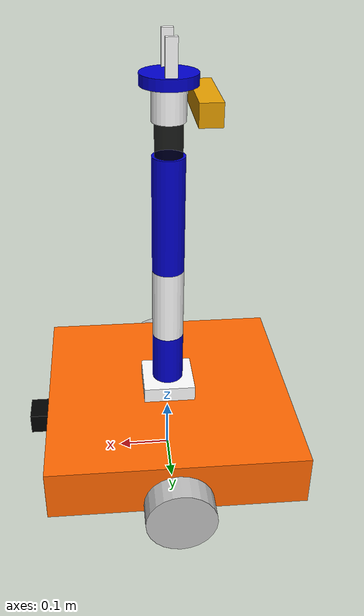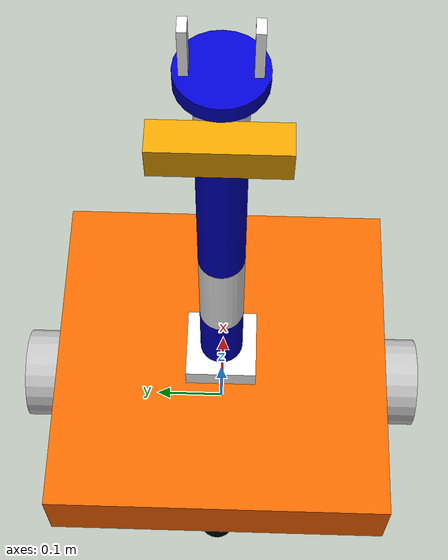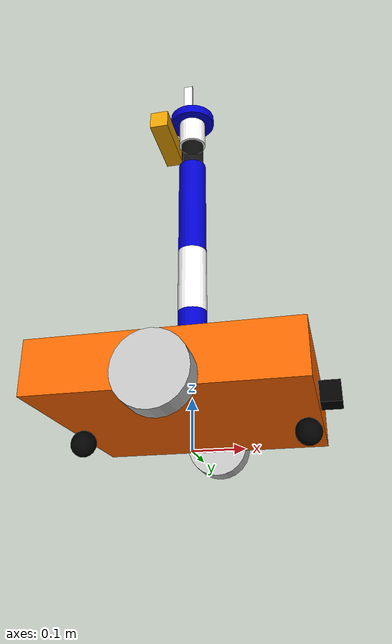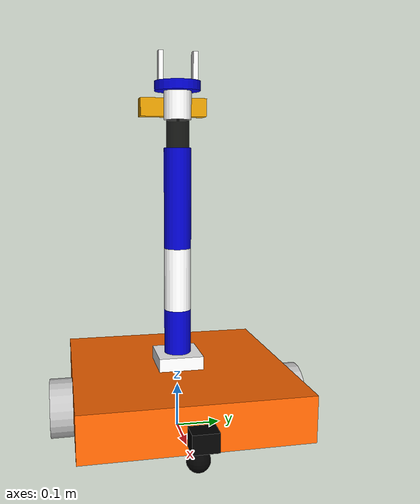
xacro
<?xml version="1.0"?>
<robot name="six_arm"
    xmlns:xacro="http://www.ros.org/wiki/xacro">

    <xacro:include filename="$(find mybot_description)/urdf/originbot_with_arm_gazebo.xacro" />
    <xacro:include filename="$(find mybot_description)/urdf/rgbd_gazebo.xacro" />
    <xacro:include filename="$(find mybot_description)/urdf/camera_gazebo.xacro" />
    <xacro:include filename="$(find mybot_description)/urdf/lidar_gazebo.xacro" />
    <xacro:include filename="$(find mybot_description)/urdf/imu_gazebo.xacro" />

    <!-- rgbd -->
    <xacro:property name="rgbd_offset_x" value="0.06" />
    <xacro:property name="rgbd_offset_y" value="0" />
    <xacro:property name="rgbd_offset_z" value="-0.03" />

    <joint name="rgbd_joint" type="fixed">
        <origin xyz="${-rgbd_offset_x} ${rgbd_offset_y} ${rgbd_offset_z}" rpy="0 ${-M_PI/2} 0" />
        <parent link="grasping_frame" />
        <child link="camera_rgbd_link" />
    </joint>

    <xacro:rgbd_camera prefix="camera_rgbd" />

    <!-- Camera -->
    <xacro:property name="camera_offset_x" value="${base_length/2+0.02}" />
    <xacro:property name="camera_offset_y" value="0" />
    <xacro:property name="camera_offset_z" value="-0.01" />

    <joint name="camera_joint" type="fixed">
        <origin xyz="${camera_offset_x} ${camera_offset_y} ${camera_offset_z}" rpy="0 0 0" />
        <parent link="base_link" />
        <child link="camera_link" />
    </joint>

    <xacro:mipi_camera prefix="camera" />

    <!-- Lidar -->
    <xacro:property name="lidar_offset_x" value="0" />
    <xacro:property name="lidar_offset_y" value="0" />
    <xacro:property name="lidar_offset_z" value="${base_height/2+0.01}" />
    <xacro:property name="robot_radius" value="${(base_length**2 + base_width**2)**0.5 / 2}" />
    <xacro:property name="safety_margin" value="0.05" />

    <joint name="lidar_joint" type="fixed">
        <origin xyz="${lidar_offset_x} ${lidar_offset_y} ${lidar_offset_z}" rpy="0 0 0" />
        <parent link="base_link" />
        <child link="laser_link" />
    </joint>

    <!-- Keep near obstacles visible before they reach the base footprint. -->
    <xacro:lidar prefix="laser" gz_visualize="false" range_min="0.30" update_rate="20" />

    <!-- IMU -->
    <xacro:imu_sensor parent_link="base_link" />

</robot>

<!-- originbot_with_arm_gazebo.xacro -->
<robot name="six_arm"
    xmlns:xacro="http://www.ros.org/wiki/xacro">

    <xacro:include filename="$(find mybot_description)/urdf/large_base.xacro" />
    <xacro:include filename="$(find mybot_description)/urdf/arm.xacro" />

    <!-- arm -->
    <xacro:property name="arm_offset_x" value="0.0" />
    <xacro:property name="arm_offset_y" value="0" />
    <xacro:property name="arm_offset_z" value="${base_height/2+0.01}" />

    <joint name="connect_joint" type="fixed">
        <origin xyz="${arm_offset_x} ${arm_offset_y} ${arm_offset_z}" rpy=" 0 0 0" />
        <parent link="base_link" />
        <child link="arm_base_link" />
    </joint>

    <!-- /////////////////////////////////   Gazebo   ////////////////////////////////////// -->
    <!-- /////////////////////////////////   机械臂   ////////////////////////////////////// -->
    <gazebo reference="arm_base_link">
        <material>Gazebo/White</material>
    </gazebo>
    <gazebo reference="link1">
        <material>Gazebo/Blue</material>
    </gazebo>
    <gazebo reference="link2">
        <material>Gazebo/White</material>
    </gazebo>
    <gazebo reference="link3">
        <material>Gazebo/Blue</material>
    </gazebo>
    <gazebo reference="link4">
        <material>Gazebo/Black</material>
    </gazebo>
    <gazebo reference="link5">
        <material>Gazebo/White</material>
    </gazebo>
    <gazebo reference="link6">
        <material>Gazebo/Blue</material>
    </gazebo>
    <gazebo reference="gripper_finger_link1">
        <material>Gazebo/White</material>
    </gazebo>
    <gazebo reference="gripper_finger_link2">
        <material>Gazebo/White</material>
    </gazebo>

    <xacro:macro name="ros2_control_joint" params="joint_name">
        <joint name="${joint_name}">
            <command_interface name="position">
                <param name="min">-1</param>
                <param name="max">1</param>
            </command_interface>
            <state_interface name="position">
                <param name="initial_value">0.0</param>
            </state_interface>
            <state_interface name="velocity" />
        </joint>
    </xacro:macro>

    <ros2_control name="GazeboSystem" type="system">
        <hardware>
            <plugin>gazebo_ros2_control/GazeboSystem</plugin>
        </hardware>
        <xacro:ros2_control_joint joint_name="joint1" />
        <xacro:ros2_control_joint joint_name="joint2" />
        <xacro:ros2_control_joint joint_name="joint3" />
        <xacro:ros2_control_joint joint_name="joint4" />
        <xacro:ros2_control_joint joint_name="joint5" />
        <xacro:ros2_control_joint joint_name="joint6" />
        <xacro:ros2_control_joint joint_name="finger_joint1" />
    </ros2_control>

    <gazebo>
        <plugin name="gazebo_ros2_control" filename="libgazebo_ros2_control.so">
            <parameters>$(find mybot)/config/ros2_controllers.yaml</parameters>
            <robot_param_node>robot_state_publisher</robot_param_node>
        </plugin>
    </gazebo>

    <!-- /////////////////////////////////   底盘   ////////////////////////////////////// -->
    <gazebo reference="base_footprint">
        <turnGravityOff>false</turnGravityOff>
    </gazebo>
    <gazebo reference="base_link">
        <material>Gazebo/Blue</material>
        <kp>1000000.0</kp>  <!-- 接触刚度（防止穿透） -->
        <kd>100.0</kd>    <!-- 接触阻尼（抑制弹飞） -->
        <minDepth>0.001</minDepth> <!-- 最小穿透深度 -->
    </gazebo>

    <gazebo reference="backl_caster_link">
        <material>Gazebo/Black</material>
        <mu1>0.01</mu1>  <!-- 静摩擦系数 -->
        <mu2>0.01</mu2>  <!-- 动摩擦系数 -->
        <kp>1000000.0</kp>  <!-- 接触刚度（防止穿透） -->
        <kd>100.0</kd>    <!-- 接触阻尼（抑制弹飞） -->
        <minDepth>0.001</minDepth> <!-- 最小穿透深度 -->
    </gazebo>

    <gazebo reference="backr_caster_link">
        <material>Gazebo/Black</material>
        <mu1>0.01</mu1>  <!-- 静摩擦系数 -->
        <mu2>0.01</mu2>  <!-- 动摩擦系数 -->
        <kp>1000000.0</kp>  <!-- 接触刚度（防止穿透） -->
        <kd>100.0</kd>    <!-- 接触阻尼（抑制弹飞） -->
        <minDepth>0.001</minDepth> <!-- 最小穿透深度 -->
    </gazebo>

    <xacro:macro name="wheel_transmission" params="prefix">
        <transmission name="${prefix}_wheel_joint_trans">
            <type>transmission_interface/SimpleTransmission</type>
            <joint name="${prefix}_wheel_joint">
                <hardwareInterface>hardware_interface/VelocityJointInterface</hardwareInterface>
            </joint>
            <actuator name="${prefix}_wheel_joint_motor">
                <hardwareInterface>hardware_interface/VelocityJointInterface</hardwareInterface>
                <mechanicalReduction>1</mechanicalReduction>
            </actuator>
        </transmission>

        <gazebo reference="${prefix}_wheel_link">
            <material>Gazebo/Gray</material>
            <mu1>1.0</mu1>  <!-- 驱动轮第一方向摩擦系数 -->
            <mu2>1.0</mu2>  <!-- 驱动轮第二方向摩擦系数 -->
            <kp>1000000.0</kp>  <!-- 接触刚度（防止穿透） -->
            <kd>100.0</kd>    <!-- 接触阻尼（抑制弹飞） -->
            <minDepth>0.001</minDepth> <!-- 最小穿透深度 -->
        </gazebo>
    </xacro:macro>

    <xacro:wheel_transmission prefix="left" />
    <xacro:wheel_transmission prefix="right" />

    <!-- Select one actuator only; default on the research branch is body force. -->
    <xacro:property name="drive_model" value="$(optenv AIC_DRIVE_MODEL body_force)" />
    <xacro:if value="${dict(wheel=True, body_force=False)[drive_model]}">
    <gazebo>
        <plugin name="differential_drive_controller" filename="libgazebo_ros_diff_drive.so">
            <update_rate>30</update_rate>
            <!-- wheels -->
            <left_joint>left_wheel_joint</left_joint>
            <right_joint>right_wheel_joint</right_joint>

            <!-- kinematics -->
            <wheel_separation>${wheel_joint_y*2}</wheel_separation>
            <wheel_diameter>${2*wheel_radius}</wheel_diameter>

            <!-- limits -->
            <max_wheel_torque>1000</max_wheel_torque>
            <!-- Nav2 velocity_smoother handles commanded acceleration and braking. -->
            <max_wheel_acceleration>0.0</max_wheel_acceleration>

            <!-- output -->
            <command_topic>cmd_vel</command_topic>
            <publish_odom>true</publish_odom>
            <publish_odom_tf>true</publish_odom_tf>
            <publish_wheel_tf>true</publish_wheel_tf>

            <odometry_topic>odom</odometry_topic>
            <odometry_frame>odom</odometry_frame>
            <robot_base_frame>base_footprint</robot_base_frame>
        </plugin>
    </gazebo>
    </xacro:if>
    <xacro:if value="${dict(wheel=False, body_force=True)[drive_model]}">
      <gazebo>
        <plugin name="body_force_controller" filename="libaic_body_drive.so">
          <body_link>base_footprint</body_link>
          <publish_rate>30</publish_rate>
          <command_timeout>0.5</command_timeout>
          <max_linear_speed>$(optenv AIC_BODY_MAX_LINEAR_SPEED 6.0)</max_linear_speed>
          <max_angular_speed>$(optenv AIC_BODY_MAX_ANGULAR_SPEED 4.0)</max_angular_speed>
          <max_lateral_acceleration>3.0</max_lateral_acceleration>
          <tilt_stop_radians>0.08726646259971647</tilt_stop_radians>
          <forward_kp>300</forward_kp><forward_ki>150</forward_ki><forward_limit>1000</forward_limit>
          <lateral_kp>1000</lateral_kp><lateral_ki>300</lateral_ki><lateral_limit>1000</lateral_limit>
          <yaw_kp>200</yaw_kp><yaw_ki>100</yaw_ki><yaw_limit>1000</yaw_limit>
          <odometry_frame>odom</odometry_frame>
          <robot_base_frame>base_footprint</robot_base_frame>
        </plugin>
      </gazebo>
    </xacro:if>
</robot>

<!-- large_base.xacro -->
<robot name="originbot"
    xmlns:xacro="http://www.ros.org/wiki/xacro">
    <!-- 大号机器人模型 -->
    <!-- PROPERTY LIST -->
    <xacro:property name="M_PI" value="3.1415926" />
    <xacro:property name="base_mass" value="10" />

    <xacro:property name="base_width" value="0.480" />
    <xacro:property name="base_length" value="0.480" />
    <xacro:property name="base_height" value="0.1" />

    <!-- 轮子 -->
    <xacro:property name="wheel_mass" value="1" />
    <xacro:property name="wheel_radius" value="0.065" />
    <xacro:property name="wheel_length" value="0.050" />

    <!-- base_length/2 = 0.16; x偏移-0.02-->
    <xacro:property name="wheel_joint_x" value="${0}" />
    <!-- (base_width+wheel_length)/2 轮距 -->
    <xacro:property name="wheel_joint_y" value="${(base_width+wheel_length)/2}" />
    <!-- base_height/2 = 0.05;向上偏移一点（-0.015） -->
    <xacro:property name="wheel_joint_z" value="${base_height/2 - 0.015}" />

    <!-- 支撑轮 -->
    <xacro:property name="caster_mass" value="0.4" />
    <!-- 计算中心到地面高度，再减去底盘得到底盘到地面高度:
    wheel_joint_z + wheel_radius  - base_height/2; -->
    <xacro:property name="caster_radius" value="${(wheel_joint_z + wheel_radius - base_height/2)/2}" />
    <!-- 与前轮对称 -->
    <xacro:property name="caster_joint_x" value="${base_length/2 - caster_radius}" />
    <xacro:property name="caster_joint_y" value="${0}" />

    <material name="yellow">
        <color rgba="1 0.4 0 1" />
    </material>
    <material name="black">
        <color rgba="0 0 0 0.95" />
    </material>
    <material name="gray">
        <color rgba="0.75 0.75 0.75 1" />
    </material>

    <!-- Macro for inertia matrix -->

    <xacro:macro name="inertial_matrix" params="m s">
    <xacro:property name="i" value="${m*s*s/6}" />
    <inertial>
        <mass value="${m}" />
        <inertia  ixx="${i}" ixy="0" ixz="0"
                iyy="${i}" iyz="0"
                izz="${i}" />
    </inertial>
    </xacro:macro>

    <xacro:macro name="box_inertia" params="m w h d">
    <inertial>
      <origin xyz="0 0 0" rpy="${pi/2} 0 ${pi/2}"/>
      <mass value="${m}"/>
      <inertia ixx="${(m/12) * (h*h + d*d)}" ixy="0.0" ixz="0.0" iyy="${(m/12) * (w*w + d*d)}" iyz="0.0" izz="${(m/12) * (w*w + h*h)}"/>
    </inertial>
    </xacro:macro>

    <xacro:macro name="cylinder_inertia" params="m r h">
    <inertial>
      <origin xyz="0 0 0" rpy="${pi/2} 0 0" />
      <mass value="${m}"/>
      <inertia ixx="${(m/12) * (3*r*r + h*h)}" ixy = "0" ixz = "0" iyy="${(m/12) * (3*r*r + h*h)}" iyz = "0" izz="${(m/2) * (r*r)}"/>
    </inertial>
    </xacro:macro>

    <!-- Macro for robot 轮子 -->
    <xacro:macro name="wheel" params="prefix reflect">
        <joint name="${prefix}_wheel_joint" type="continuous">
            <origin xyz="${wheel_joint_x} ${reflect*wheel_joint_y} ${-wheel_joint_z}"
                rpy="0 0 0" />
            <parent link="base_link" />
            <child link="${prefix}_wheel_link" />
            <axis xyz="0 1 0" />
        </joint>

        <link name="${prefix}_wheel_link">
            <visual>
                <origin xyz="0 0 0" rpy="${M_PI/2} 0 0" />
                <geometry>
                    <cylinder radius="${wheel_radius}" length="${wheel_length}" />
                </geometry>
                <material name="gray" />
            </visual>
            <collision>
                <origin xyz="0 0 0" rpy="${M_PI/2} 0 0" />
                <geometry>
                    <cylinder radius="${wheel_radius}" length="${wheel_length}" />
                </geometry>
            </collision>
            <!-- Wheel cylinders rotate about Y; use their own radius and width. -->
            <inertial>
                <mass value="${wheel_mass}" />
                <inertia ixx="${wheel_mass*(3*wheel_radius**2+wheel_length**2)/12}"
                         ixy="0" ixz="0"
                         iyy="${wheel_mass*wheel_radius**2/2}" iyz="0"
                         izz="${wheel_mass*(3*wheel_radius**2+wheel_length**2)/12}" />
            </inertial>
        </link>

    </xacro:macro>

    <!-- Macro for robot 支撑轮 -->
    <xacro:macro name="caster" params="prefix reflect">
        <joint name="${prefix}_caster_joint" type="fixed">
            <origin xyz="${reflect*caster_joint_x} ${caster_joint_y} ${-(base_height/2 + caster_radius)}"
                rpy="0 0 0" />
            <parent link="base_link" />
            <child link="${prefix}_caster_link" />
        </joint>

        <link name="${prefix}_caster_link">
            <visual>
                <origin xyz="0 0 0" rpy="0 0 0" />
                <geometry>
                    <sphere radius="${caster_radius}" />
                </geometry>
                <material name="black" />
            </visual>
            <collision>
                <origin xyz="0 0 0" rpy="0 0 0" />
                <geometry>
                    <sphere radius="${caster_radius}" />
                </geometry>
            </collision>
            <xacro:inertial_matrix m="${caster_mass}" s="${caster_radius}" />
        </link>

    </xacro:macro>

    <link name="base_footprint">
        <visual>
            <origin xyz="0 0 0" rpy="0 0 0" />
            <geometry>
                <box size="0.001 0.001 0.001" />
            </geometry>
        </visual>
    </link>

    <joint name="base_footprint_joint" type="fixed">
        <origin xyz="0 0 ${base_height/2 + caster_radius*2}" rpy="0 0 0" />
        <parent link="base_footprint" />
        <child link="base_link" />
    </joint>

    <link name="base_link">
        <visual>
            <origin xyz=" 0 0 0" rpy="0 0 0" />
            <geometry>
                <box size="${base_length} ${base_width} ${base_height}" />
            </geometry>
            <material name="yellow" />
        </visual>
        <collision>
            <origin xyz=" 0 0 0" rpy="0 0 0" />
            <geometry>
                <box size="${base_length} ${base_width+wheel_length*2} ${base_height}" />
            </geometry>
        </collision>
        <xacro:box_inertia m="${base_mass}" w="${base_width}" h="${base_height}" d="${base_length}" />

    </link>

    <xacro:wheel prefix="left" reflect="1" />
    <xacro:wheel prefix="right" reflect="-1" />

    <xacro:caster prefix="backr" reflect="-1" />
    <xacro:caster prefix="backl" reflect="1" />

</robot>

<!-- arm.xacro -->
<robot name="six_arm"
    xmlns:xacro="http://www.ros.org/wiki/xacro">
    <!-- 定义一些颜色 -->
    <material name="Blue">
        <color rgba="0 0 0.8 1" />
    </material>

    <material name="Black">
        <color rgba="0 0 0 0.85" />
    </material>

    <material name="White">
        <color rgba="1 1 1 1" />
    </material>

    <!-- 常量 -->
    <xacro:property name="M_PI" value="3.1415926" />
    <xacro:property name="P" value="600.0" />

    <!-- 连杆半径和长度 -->
    <!-- link1 -->
    <xacro:property name="link1_rad" value="0.03" />
    <xacro:property name="link1_len" value="0.1" />
    <!-- link2 -->
    <xacro:property name="link2_rad" value="0.03" />
    <xacro:property name="link2_len" value="0.14" />
    <!-- link3 -->
    <xacro:property name="link3_rad" value="0.03" />
    <xacro:property name="link3_len" value="0.22" />
    <!-- link4 -->
    <xacro:property name="link4_rad" value="0.025" />
    <xacro:property name="link4_len" value="0.06" />
    <!-- link5 -->
    <xacro:property name="link5_rad" value="0.03" />
    <xacro:property name="link5_len" value="0.06" />
    <!-- link6 -->
    <xacro:property name="link6_rad" value="0.05" />
    <xacro:property name="link6_len" value="0.02" />
    <!-- 夹爪 长宽高-->
    <!-- gripper -->
    <xacro:property name="gripper_l" value="0.08" />
    <xacro:property name="gripper_w" value="0.01" />
    <xacro:property name="gripper_h" value="0.02" />
    <!-- 夹爪安装距离参数0~1 -->
    <xacro:property name="gripper_offset" value="0.75" />
    <xacro:property name="gripper_offset_h" value="0.002" />
    <!-- 底座长宽高 -->
    <!-- base -->
    <xacro:property name="base_l" value="0.1" />
    <xacro:property name="base_w" value="0.1" />
    <xacro:property name="base_h" value="0.04" />

    <!-- 惯性矩阵 -->

    <xacro:macro name="box_i" params="w h d">
        <inertial>
        <origin xyz="0 0 0" rpy="${pi/2} 0 ${pi/2}"/>
        <xacro:property name="m" value="${w*h*d*P}" />
        <mass value="${m}"/>
        <inertia ixx="${(m/12) * (h*h + d*d)}" ixy="0.0" ixz="0.0" iyy="${(m/12) * (w*w + d*d)}" iyz="0.0" izz="${(m/12) * (w*w + h*h)}"/>
        </inertial>
    </xacro:macro>

    <xacro:macro name="cylinder_i" params="r h center:=0">
        <inertial>
        <!-- Arm cylinders extend along Z; COM must match the visual/collision. -->
        <origin xyz="0 0 ${center}" rpy="0 0 0" />
        <xacro:property name="m" value="${(pi*r*r*h*P)}" />
        <mass value="${m}"/>
        <inertia ixx="${(m/12) * (3*r*r + h*h)}" ixy = "0" ixz = "0" iyy="${(m/12) * (3*r*r + h*h)}" iyz = "0" izz="${(m/2) * (r*r)}"/>
        </inertial>
  </xacro:macro>

    <!-- 底座 -->
    <link name="arm_base_link">
        <visual>
            <origin xyz="0 0 0" rpy="0 0 0" />
            <geometry>
                <box size="${base_l} ${base_w} ${base_h}" />
            </geometry>
            <material name="White" />
        </visual>
        <collision>
            <geometry>
                <box size="${base_l} ${base_w} ${base_h}" />
            </geometry>
        </collision>
        <xacro:box_i w="${base_w}" h="${base_h}" d="${base_l}" />
    </link>

    <!-- joint1 -->
    <joint name="joint1" type="revolute">
        <parent link="arm_base_link" />
        <child link="link1" />
        <origin xyz="0 0 ${base_h / 2 + link1_len / 2}" rpy="0 0 0" />
        <axis xyz="0 0 1" />
        <limit lower="-3.14" upper="3.14" effort="300" velocity="2.0" />
        <joint_properties damping="50" friction="1" />
    </joint>

    <!-- link1 -->
    <link name="link1">
        <visual>
            <geometry>
                <cylinder radius="${link1_rad}" length="${link1_len}" />
            </geometry>
            <material name="Blue" />
        </visual>
        <collision>
            <geometry>
                <cylinder radius="${link1_rad}" length="${link1_len}" />
            </geometry>
        </collision>
        <xacro:cylinder_i r="${link1_rad}" h="${link1_len}" />
    </link>

    <!-- link2 -->
    <link name="link2">
        <visual>
            <origin xyz="0 0 ${link2_len/2}" rpy="0 0 0" />
            <geometry>
                <cylinder radius="${link2_rad}" length="${link2_len}" />
            </geometry>
            <material name="White" />
        </visual>
        <collision>
            <origin xyz="0 0 ${link2_len/2}" rpy="0 0 0" />
            <geometry>
                <cylinder radius="${link2_rad}" length="${link2_len}" />
            </geometry>
        </collision>
        <xacro:cylinder_i r="${link2_rad}" h="${link2_len}" center="${link2_len/2}" />
    </link>

    <!-- joint2 -->
    <joint name="joint2" type="revolute">
        <parent link="link1" />
        <child link="link2" />
        <origin xyz="0 0 ${link1_len/2}" rpy="0 0 0" />
        <axis xyz="0 1 0" />
        <limit effort="300" velocity="2.0" lower="-2.35" upper="2.35" />
        <joint_properties damping="50" friction="1" />
    </joint>

    <!-- link3 -->
    <link name="link3">
        <visual>
            <origin xyz="0 0 ${link3_len/2}" rpy="0 0 0" />
            <geometry>
                <cylinder radius="${link3_rad}" length="${link3_len}" />
            </geometry>
            <material name="Blue" />
        </visual>
        <collision>
            <origin xyz="0 0 ${link3_len/2}" rpy="0 0 0" />
            <geometry>
                <cylinder radius="${link3_rad}" length="${link3_len}" />
            </geometry>
        </collision>
        <xacro:cylinder_i r="${link3_rad}" h="${link3_len}" center="${link3_len/2}" />
    </link>

    <!-- joint3 -->
    <joint name="joint3" type="revolute">
        <parent link="link2" />
        <child link="link3" />
        <origin xyz="0 0 ${link2_len}" rpy="0 0 0" />
        <axis xyz="0 1 0" />
        <limit effort="300" velocity="2.0" lower="-2.62" upper="2.62" />

        <joint_properties damping="50" friction="1" />
    </joint>

    <!-- link4 -->
    <link name="link4">
        <visual>
            <origin xyz="0 0 ${link4_len/2}" rpy="0 0 0" />
            <geometry>
                <cylinder radius="${link4_rad}" length="${link4_len}" />
            </geometry>
            <material name="Black" />
        </visual>
        <collision>
            <origin xyz="0 0 ${link4_len/2}" rpy="0 0 0" />
            <geometry>
                <cylinder radius="${link4_rad}" length="${link4_len}" />
            </geometry>
        </collision>
        <xacro:cylinder_i r="${link4_rad}" h="${link4_len}" center="${link4_len/2}" />
    </link>
    <!-- joint4 -->
    <joint name="joint4" type="revolute">
        <parent link="link3" />
        <child link="link4" />
        <origin xyz="0 0 ${link3_len}" rpy="0 0 0" />
        <axis xyz="0 0 1" />
        <limit lower="-3.14" upper="3.14" effort="300" velocity="2.0" />
        <joint_properties damping="50" friction="1" />
    </joint>

    <!-- link5 -->
    <link name="link5">
        <visual>
            <origin xyz="0 0 ${link5_len/2}" rpy="0 0 0" />
            <geometry>
                <cylinder radius="${link5_rad}" length="${link5_len}" />
            </geometry>
            <material name="White" />
        </visual>
        <collision>
            <origin xyz="0 0 ${link5_len/2}" rpy="0 0 0" />
            <geometry>
                <cylinder radius="${link5_rad}" length="${link5_len}" />
            </geometry>
        </collision>
        <xacro:cylinder_i r="${link5_rad}" h="${link5_len}" center="${link5_len/2}" />
    </link>

    <!-- joint5 -->
    <joint name="joint5" type="revolute">
        <parent link="link4" />
        <child link="link5" />
        <origin xyz="0 0 ${link4_len}" rpy="0 0 0" />
        <axis xyz="0 -1 0" />
        <limit effort="300" velocity="2.0" lower="-2.04" upper="2.04" />

        <joint_properties damping="50" friction="1" />
    </joint>

    <!-- link6 -->
    <link name="link6">
        <visual>
            <origin xyz="0 0 ${link6_len/2}" rpy="0 0 0" />
            <geometry>
                <cylinder radius="${link6_rad}" length="${link6_len}" />
            </geometry>
            <material name="Blue" />
        </visual>
        <collision>
            <origin xyz="0 0 ${link6_len/2}" rpy="0 0 0" />
            <geometry>
                <cylinder radius="${link6_rad}" length="${link6_len}" />
            </geometry>
        </collision>
        <xacro:cylinder_i r="${link6_rad}" h="${link6_len}" center="${link6_len/2}" />
    </link>

    <!-- joint6 -->
    <joint name="joint6" type="revolute">
        <parent link="link5" />
        <child link="link6" />
        <origin xyz="0 0 ${link5_len}" rpy="0 0 0" />
        <axis xyz="0 0 1" />
        <limit lower="-3.14" upper="3.14" effort="300" velocity="2.0" />
        <joint_properties damping="50" friction="1" />
    </joint>

    <!-- 夹爪 -->
    <xacro:macro name="gripper_finger_link" params="num">
        <link name="gripper_finger_link${num}">
            <visual>
                <geometry>
                    <box size="${gripper_l} ${gripper_w} ${gripper_h}" />
                </geometry>
                <material name="White" />
            </visual>
            <collision>
                <geometry>
                    <box size="${gripper_l} ${gripper_w} ${gripper_h}" />
                </geometry>
            </collision>
            <xacro:box_i d="${gripper_l}" w="${gripper_w}" h="${gripper_h}" />
        </link>
    </xacro:macro>

    <xacro:gripper_finger_link num="1" />
    <xacro:gripper_finger_link num="2" />

    <joint name="finger_joint1" type="prismatic">
        <parent link="link6" />
        <child link="gripper_finger_link1" />
        <origin xyz="0 -${link6_rad *gripper_offset} ${gripper_h*2+gripper_offset_h}"
            rpy="0 ${M_PI/2} 0" />
        <axis xyz="0 1 0" />
        <limit effort="100" lower="0" upper="${link6_rad+gripper_w}" velocity="2.0" />
        <dynamics damping="50" friction="1" />
    </joint>

    <joint name="finger_joint2" type="fixed">
        <parent link="link6" />
        <child link="gripper_finger_link2" />
        <origin xyz="0 ${link6_rad *gripper_offset} ${gripper_h*2+gripper_offset_h}"
            rpy="0 ${M_PI/2} 0" />
    </joint>

    <!-- Grasping frame -->
    <link name="grasping_frame" />

    <joint name="grasping_frame_joint" type="fixed">
        <parent link="link6" />
        <child link="grasping_frame" />
        <origin xyz="0 0 0" rpy="0 0 0" />
    </joint>
</robot>

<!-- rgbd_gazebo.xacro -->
<robot xmlns:xacro="http://www.ros.org/wiki/xacro" name="rgbd_camera">

    <xacro:macro name="rgbd_camera" params="prefix:=camera">
        <!-- Create rgbd reference frame -->
        <!-- Add mesh for rgbd -->
        <link name="${prefix}_link">
            <origin xyz="0 0 0" rpy="0 0 0" />
            <visual>
                <origin xyz="0 0 0" rpy="0 0 ${M_PI/2}" />
                <geometry>
                    <box size="0.15 0.04 0.04" />
                </geometry>
            </visual>

            <collision>
                <origin xyz="0.0 0.0 0.0" rpy="0 0 0" />
                <geometry>
                    <cylinder length="0.01" radius="0.015" />
                </geometry>
            </collision>

            <inertial>
                <mass value="0.1" />
                <inertia ixx="0.0001" ixy="0" ixz="0" iyy="0.0001" iyz="0" izz="0.0001" />
            </inertial>
        </link>

        <joint name="${prefix}_optical_joint" type="fixed">
            <origin xyz="0 0 0" rpy="-1.5708 0 -1.5708" />
            <parent link="${prefix}_link" />
            <child link="${prefix}_frame_optical" />
        </joint>

        <link name="${prefix}_frame_optical" />

        <gazebo reference="${prefix}_link">
            <sensor type="depth" name="${prefix}">
                <always_on>true</always_on>
                <update_rate>15.0</update_rate>
                <pose>0 0 0 0 0 0</pose>
                <camera name="camera">
                    <horizontal_fov>${60.0*M_PI/180.0}</horizontal_fov>
                    <image>
                        <format>R8G8B8</format>
                        <width>640</width>
                        <height>480</height>
                    </image>
                    <clip>
                        <near>0.05</near>
                        <far>8.0</far>
                    </clip>
                </camera>
                <plugin name="${prefix}_controller" filename="libgazebo_ros_camera.so">
                    <ros>
                        <namespace>${prefix}</namespace>
                    </ros>
                    <camera_name>${prefix}</camera_name>
                    <frame_name>${prefix}_frame_optical</frame_name>

                    <hack_baseline>0.07</hack_baseline>
                    <min_depth>0.001</min_depth>
                    <max_depth>300.0</max_depth>
                </plugin>
            </sensor>
        </gazebo>

    </xacro:macro>
</robot>

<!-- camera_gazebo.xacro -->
<robot xmlns:xacro="http://www.ros.org/wiki/xacro" name="camera">

    <xacro:macro name="mipi_camera" params="prefix:=camera show_visual:=true">
        <!-- Create camera reference frame -->
        <link name="${prefix}_link">
            <inertial>
                <mass value="0.1" />
                <origin xyz="0 0 0" />
                <inertia ixx="0.01" ixy="0.0" ixz="0.0"
                         iyy="0.01" iyz="0.0"
                         izz="0.01" />
            </inertial>

            <xacro:if value="${show_visual}"><visual>
                <origin xyz=" 0 0 0 " rpy="0 0 0" />
                <geometry>
                    <box size="0.04 0.055 0.04" />
                </geometry>
                <material name="black"/>
            </visual></xacro:if>

            <collision>
                <origin xyz="0.0 0.0 0.0" rpy="0 0 0" />
                <geometry>
                    <box size="0.04 0.055 0.04" />
                </geometry>
            </collision>
        </link>
        <gazebo reference="${prefix}_link">
            <material>Gazebo/Black</material>
        </gazebo>

        <gazebo reference="${prefix}_link">
            <sensor type="camera" name="camera_node">
                <update_rate>30.0</update_rate>
                <camera name="head">
                    <horizontal_fov>1.3962634</horizontal_fov>
                    <image>
                        <width>1280</width>
                        <height>720</height>
                        <format>R8G8B8</format>
                    </image>
                    <clip>
                        <near>0.02</near>
                        <far>300</far>
                    </clip>
                    <noise>
                        <type>gaussian</type>
                        <mean>0.0</mean>
                        <stddev>0.007</stddev>
                    </noise>
                </camera>
                <plugin name="gazebo_camera" filename="libgazebo_ros_camera.so">
				    <ros>
				        <remapping>~/image_raw:=image_raw</remapping>
				        <remapping>~/camera_info:=camera_info</remapping>
				    </ros>
				    <camera_name>${prefix}</camera_name>
				    <frame_name>${prefix}_link</frame_name>
				    <hack_baseline>0.2</hack_baseline>
                </plugin>
            </sensor>
        </gazebo>

    </xacro:macro>
</robot>

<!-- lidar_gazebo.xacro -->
<robot xmlns:xacro="http://www.ros.org/wiki/xacro" name="laser">

    <xacro:macro name="lidar"
        params="prefix:=laser gz_visualize:=false range_min:=0.5 range_max:=30.0 update_rate:=10">
        <!-- Create laser reference frame -->
        <link name="${prefix}_link">
            <inertial>
                <mass value="0.1" />
                <origin xyz="0 0 0" />
                <inertia ixx="0.01" ixy="0.0" ixz="0.0" iyy="0.01" iyz="0.0" izz="0.01" />
            </inertial>

            <visual>
                <origin xyz=" 0 0 0 " rpy="0 0 0" />
                <geometry>
                    <cylinder length="0.02" radius="0.031" />
                </geometry>
                <material name="black" />
            </visual>

            <collision>
                <origin xyz="0.0 0.0 0.0" rpy="0 0 0" />
                <geometry>
                    <cylinder length="0.01" radius="0.015" />
                </geometry>
            </collision>
        </link>
        <gazebo reference="${prefix}_link">
            <material>Gazebo/Black</material>
            <!-- 禁用自碰撞检测 -->
            <selfCollide>false</selfCollide>
            <disableCollisions>true</disableCollisions>
        </gazebo>

        <gazebo reference="${prefix}_link">
            <sensor type="ray" name="lidar">
                <update_rate>${update_rate}</update_rate>
                <visualize>${gz_visualize}</visualize>
                <ray>
                    <scan>
                        <horizontal>
                            <samples>1441</samples>
                            <resolution>1</resolution>
                            <min_angle>-3.14159</min_angle>
                            <max_angle>3.14159</max_angle>
                        </horizontal>
                    </scan>
                    <range>
                        <min>${range_min}</min>
                        <max>${range_max}</max>
                        <resolution>0.01</resolution>
                    </range>
                    <noise>
                        <type>gaussian</type>
                        <mean>0.0</mean>
                        <stddev>0.005</stddev>
                    </noise>
                </ray>
                <plugin name="gazebo_lidar" filename="libgazebo_ros_ray_sensor.so">
                    <ros>
                        <namespace>/</namespace>
                        <remapping>~/out:=scan</remapping>
                    </ros>
                    <output_type>sensor_msgs/LaserScan</output_type>
                    <frame_name>${prefix}_link</frame_name>
                </plugin>
            </sensor>
        </gazebo>

    </xacro:macro>
</robot>

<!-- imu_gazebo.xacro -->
<robot xmlns:xacro="http://www.ros.org/wiki/xacro" name="imu_gazebo">

    <xacro:macro name="imu_sensor" params="parent_link:=base_link">
        <!-- Create imu reference frame -->
        <link name="imu_link">
            <visual>
                <geometry>
                <box size="0.05 0.05 0.05"/>
                </geometry>
            </visual>

            <collision>
                <geometry>
                <box size="0.05 0.05 0.05"/>
                </geometry>
            </collision>

            <inertial>
                <mass value="0.1" />
                <inertia ixx="0.0001" ixy="0" ixz="0" iyy="0.0001" iyz="0" izz="0.0001" />
            </inertial>
        </link>

        <joint name="imu_joint" type="fixed">
            <parent link="${parent_link}" />
            <child link="imu_link" />
            <origin xyz="0 0 0.01" rpy="0 0 0" />
        </joint>

    <gazebo reference="imu_link">
        <sensor name="imu_sensor" type="imu">
        <plugin filename="libgazebo_ros_imu_sensor.so" name="imu_plugin">
            <ros>
                <remapping>~/out:=imu</remapping>
            </ros>
            <initial_orientation_as_reference>false</initial_orientation_as_reference>
            </plugin>
            <always_on>true</always_on>
            <update_rate>100</update_rate>
            <visualize>true</visualize>
            <imu>
            <angular_velocity>
                <x>
                <noise type="gaussian">
                    <mean>0.0</mean>
                    <stddev>2e-4</stddev>
                    <bias_mean>0.0000075</bias_mean>
                    <bias_stddev>0.0000008</bias_stddev>
                </noise>
                </x>
                <y>
                <noise type="gaussian">
                    <mean>0.0</mean>
                    <stddev>2e-4</stddev>
                    <bias_mean>0.0000075</bias_mean>
                    <bias_stddev>0.0000008</bias_stddev>
                </noise>
                </y>
                <z>
                <noise type="gaussian">
                    <mean>0.0</mean>
                    <stddev>2e-4</stddev>
                    <bias_mean>0.0000075</bias_mean>
                    <bias_stddev>0.0000008</bias_stddev>
                </noise>
                </z>
            </angular_velocity>
            <linear_acceleration>
                <x>
                <noise type="gaussian">
                    <mean>0.0</mean>
                    <stddev>1.7e-2</stddev>
                    <bias_mean>0.1</bias_mean>
                    <bias_stddev>0.001</bias_stddev>
                </noise>
                </x>
                <y>
                <noise type="gaussian">
                    <mean>0.0</mean>
                    <stddev>1.7e-2</stddev>
                    <bias_mean>0.1</bias_mean>
                    <bias_stddev>0.001</bias_stddev>
                </noise>
                </y>
                <z>
                <noise type="gaussian">
                    <mean>0.0</mean>
                    <stddev>1.7e-2</stddev>
                    <bias_mean>0.1</bias_mean>
                    <bias_stddev>0.001</bias_stddev>
                </noise>
                </z>
            </linear_acceleration>
            </imu>
        </sensor>
    </gazebo>

    </xacro:macro>
</robot>
